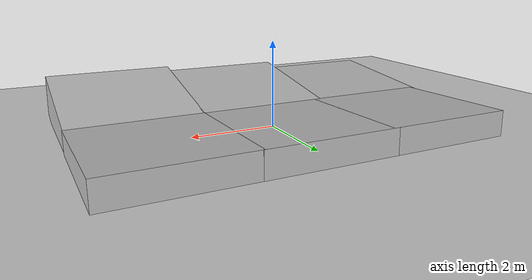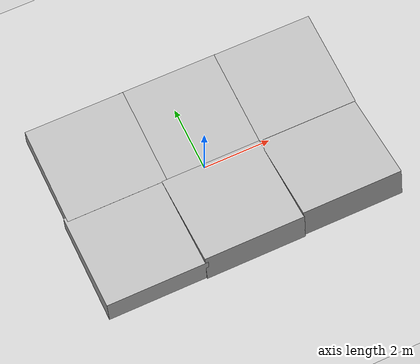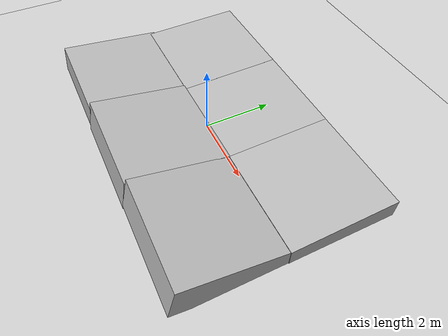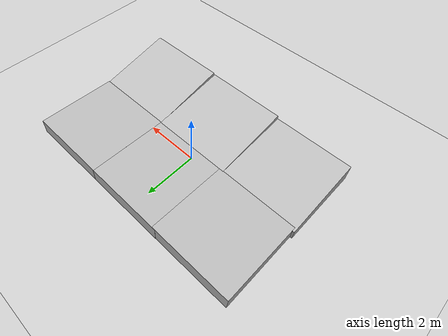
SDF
<sdf version="1.6">
 <world name="default">
  <light name="sun" type="directional">
   <pose>0 0 10 0 -0 0</pose>
   <diffuse>0.8 0.8 0.8 1</diffuse>
   <specular>0.2 0.2 0.2 1</specular>
   <attenuation>
    <range>1000</range>
    <constant>0.9</constant>
    <linear>0.01</linear>
    <quadratic>0.001</quadratic>
   </attenuation>
   <direction>-0.5 0.1 -0.9</direction>
  </light>
  <model name="ground_plane">
   <static>1</static>
   <link name="link">
    <collision name="collision">
     <geometry><plane><normal>0 0 1</normal><size>100 100</size></plane></geometry>
     <surface>
      <contact><collide_bitmask>65535</collide_bitmask></contact>
      <friction><ode><mu>100</mu><mu2>50</mu2></ode></friction>
     </surface>
    </collision>
    <visual name="visual">
     <cast_shadows>0</cast_shadows>
     <geometry><plane><normal>0 0 1</normal><size>100 100</size></plane></geometry>
     <material>
      <script><uri>file://media/materials/scripts/gazebo.material</uri><name>Gazebo/Grey</name></script>
     </material>
    </visual>
   </link>
  </model>
  <gravity>0 0 -9.8</gravity>
  <magnetic_field>6e-06 2.3e-05 -4.2e-05</magnetic_field>
  <atmosphere type="adiabatic"/>
  <physics name="default_physics" default="0" type="ode">
   <max_step_size>0.001</max_step_size>
   <real_time_factor>1</real_time_factor>
   <real_time_update_rate>1000</real_time_update_rate>
  </physics>
  <scene><ambient>0.4 0.4 0.4 1</ambient><background>0.7 0.7 0.7 1</background><shadows>1</shadows></scene>
  <audio><device>default</device></audio>
  <spherical_coordinates>
   <surface_model>EARTH_WGS84</surface_model>
   <latitude_deg>0</latitude_deg>
   <longitude_deg>0</longitude_deg>
   <elevation>0</elevation>
   <heading_deg>0</heading_deg>
  </spherical_coordinates>
  <model name="brick_box_3x1x3">
   <static>1</static>
   <link name="chassis">
    <pose>0 0 1.5 0 -0 0</pose>
    <collision name="collision"><geometry><box><size>3 1 3</size></box></geometry></collision>
    <visual name="visual">
     <geometry><mesh><uri>model://brick_box_3x1x3/meshes/simple_box.dae</uri><scale>3 1 3</scale></mesh></geometry>
     <material>
      <script>
       <uri>model://brick_box_3x1x3/materials/scripts</uri>
       <uri>model://brick_box_3x1x3/materials/textures</uri>
       <name>BrickBox/Diffuse</name>
      </script>
     </material>
    </visual>
   </link>
   <pose>0.173677 -0.104571 0 -1.54661 0 0</pose>
  </model>
  <model name="brick_box_3x1x3_clone">
   <static>1</static>
   <link name="chassis">
    <pose>0 0 1.5 0 -0 0</pose>
    <collision name="collision"><geometry><box><size>3 1 3</size></box></geometry></collision>
    <visual name="visual">
     <geometry><mesh><uri>model://brick_box_3x1x3/meshes/simple_box.dae</uri><scale>3 1 3</scale></mesh></geometry>
     <material>
      <script>
       <uri>model://brick_box_3x1x3/materials/scripts</uri>
       <uri>model://brick_box_3x1x3/materials/textures</uri>
       <name>BrickBox/Diffuse</name>
      </script>
     </material>
    </visual>
   </link>
   <pose>3.13956 -0.109302 0 -1.54661 0 0</pose>
  </model>
  <model name="brick_box_3x1x3_clone_0">
   <static>1</static>
   <link name="chassis">
    <pose>0 0 1.5 0 -0 0</pose>
    <collision name="collision"><geometry><box><size>3 1 3</size></box></geometry></collision>
    <visual name="visual">
     <geometry><mesh><uri>model://brick_box_3x1x3/meshes/simple_box.dae</uri><scale>3 1 3</scale></mesh></geometry>
     <material>
      <script>
       <uri>model://brick_box_3x1x3/materials/scripts</uri>
       <uri>model://brick_box_3x1x3/materials/textures</uri>
       <name>BrickBox/Diffuse</name>
      </script>
     </material>
    </visual>
   </link>
   <pose>-2.70227 -0.107327 0 -1.54661 0 0</pose>
  </model>
  <model name="brick_box_3x1x3_clone_1">
   <static>1</static>
   <link name="chassis">
    <pose>0 0 1.5 0 -0 0</pose>
    <collision name="collision"><geometry><box><size>3 1 3</size></box></geometry></collision>
    <visual name="visual">
     <geometry><mesh><uri>model://brick_box_3x1x3/meshes/simple_box.dae</uri><scale>3 1 3</scale></mesh></geometry>
     <material>
      <script>
       <uri>model://brick_box_3x1x3/materials/scripts</uri>
       <uri>model://brick_box_3x1x3/materials/textures</uri>
       <name>BrickBox/Diffuse</name>
      </script>
     </material>
    </visual>
   </link>
   <pose>-2.77303 -3.01926 0.289537 -1.67198 0 0</pose>
  </model>
  <model name="brick_box_3x1x3_clone_2">
   <static>1</static>
   <link name="chassis">
    <pose>0 0 1.5 0 -0 0</pose>
    <collision name="collision"><geometry><box><size>3 1 3</size></box></geometry></collision>
    <visual name="visual">
     <geometry><mesh><uri>model://brick_box_3x1x3/meshes/simple_box.dae</uri><scale>3 1 3</scale></mesh></geometry>
     <material>
      <script>
       <uri>model://brick_box_3x1x3/materials/scripts</uri>
       <uri>model://brick_box_3x1x3/materials/textures</uri>
       <name>BrickBox/Diffuse</name>
      </script>
     </material>
    </visual>
   </link>
   <pose>0.142013 -3.00459 0.470327 -1.73354 0 0</pose>
  </model>
  <model name="brick_box_3x1x3_clone_3">
   <static>1</static>
   <link name="chassis">
    <pose>0 0 1.5 0 -0 0</pose>
    <collision name="collision"><geometry><box><size>3 1 3</size></box></geometry></collision>
    <visual name="visual">
     <geometry><mesh><uri>model://brick_box_3x1x3/meshes/simple_box.dae</uri><scale>3 1 3</scale></mesh></geometry>
     <material>
      <script>
       <uri>model://brick_box_3x1x3/materials/scripts</uri>
       <uri>model://brick_box_3x1x3/materials/textures</uri>
       <name>BrickBox/Diffuse</name>
      </script>
     </material>
    </visual>
   </link>
   <pose>3.12642 -2.96899 0.596092 -1.78572 0 0</pose>
  </model>
 </world>
</sdf>
